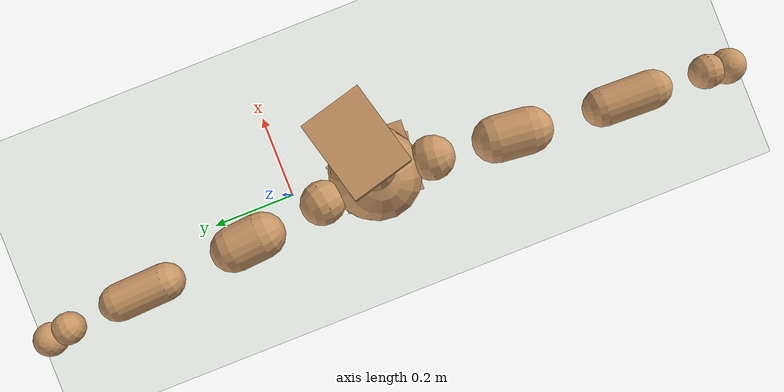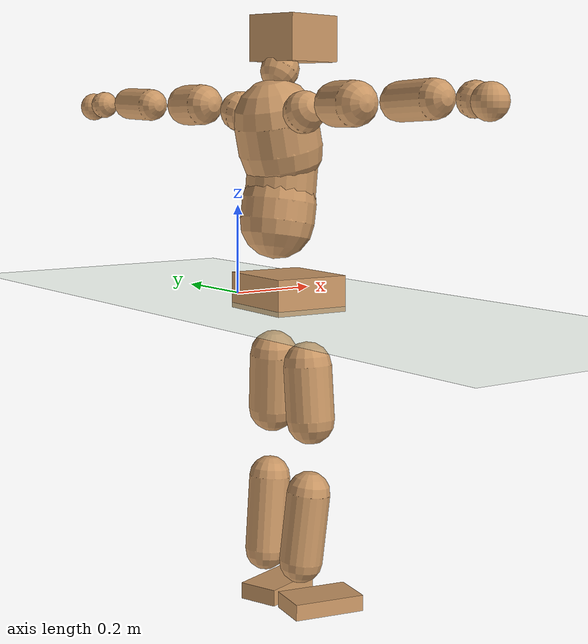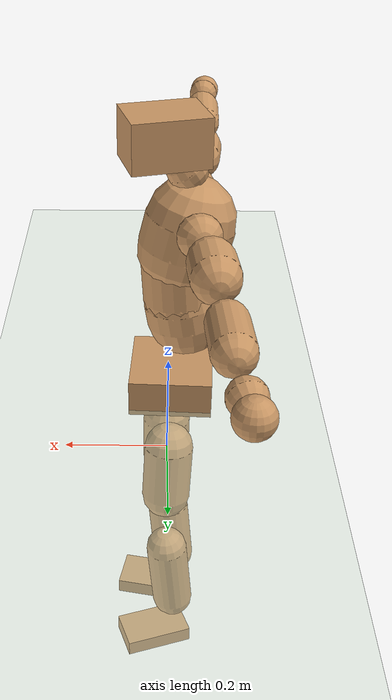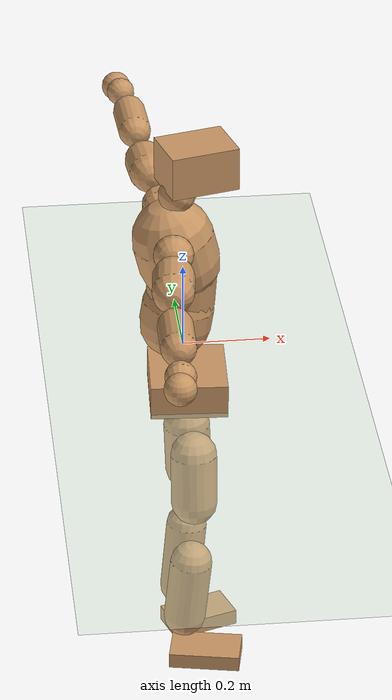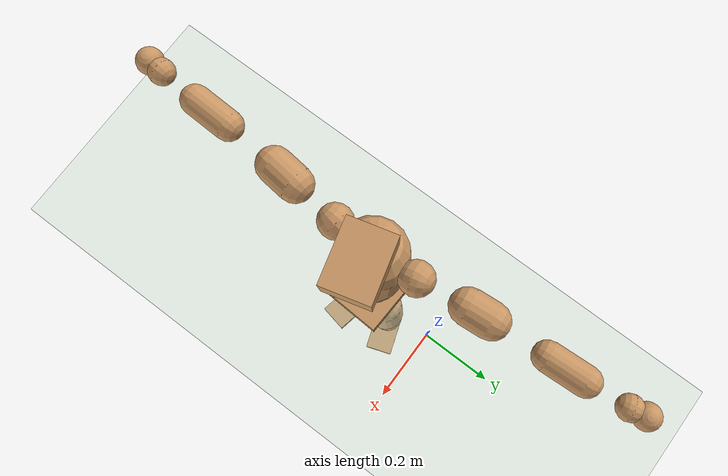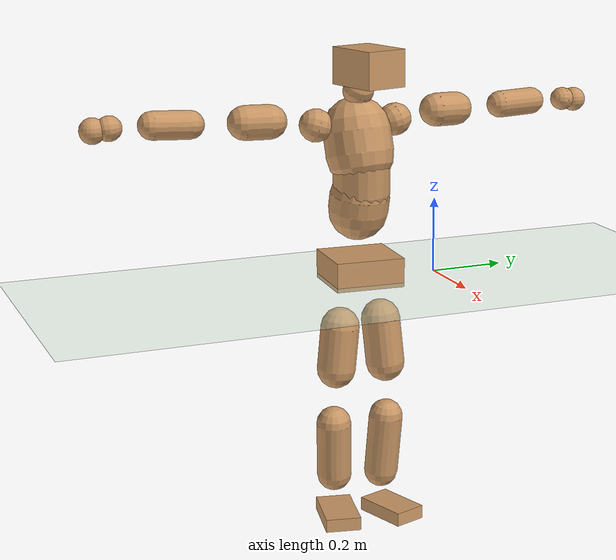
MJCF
<mujoco model="humanoid">
  <compiler coordinate="local" angle="radian"/>
  <default>
    <joint damping="0.0" armature="0.01" stiffness="0.0" limited="true"/>
    <geom conaffinity="1" condim="3" contype="7" margin="0.001" rgba="0.8 0.6 .4 1"/>
  </default>
  <asset>
    <texture type="skybox" builtin="gradient" rgb1=".4 .5 .6" rgb2="0 0 0" width="100" height="100"/>
    <texture builtin="flat" height="1278" mark="cross" markrgb="1 1 1" name="texgeom" random="0.01" rgb1="0.8 0.6 0.4" rgb2="0.8 0.6 0.4" type="cube" width="127"/>
    <texture builtin="checker" height="100" name="texplane" rgb1="0 0 0" rgb2="0.8 0.8 0.8" type="2d" width="100"/>
    <material name="MatPlane" reflectance="0.5" shininess="1" specular="1" texrepeat="60 60" texture="texplane"/>
    <material name="geom" texture="texgeom" texuniform="true"/>
  </asset>
  <worldbody>
    <light cutoff="100" diffuse="1 1 1" dir="-0 0 -1.3" directional="true" exponent="1" pos="0 0 1.3" specular=".1 .1 .1"/>
    <geom conaffinity="1" condim="3" name="floor" pos="0 0 0" rgba="0.8 0.9 0.8 1" size="100 100 .2" type="plane" material="MatPlane"/>
    <body name="Pelvis" pos="-0.0031 -0.2103 0.0326">
      <freejoint name="Pelvis"/>
      <geom type="box" contype="1" conaffinity="1" density="5359.375266" pos="-0.0081 0.0004 -0.0066" size="0.0854 0.0931 0.0388" quat="0.9997 0.0000 0.0000 -0.0251" name="Pelvis"/>
      <body name="L_Hip" pos="-0.0077 0.0511 -0.07">
        <joint name="L_Hip_x" type="hinge" pos="0 0 0" axis="1 0 0" stiffness="1600" damping="160" armature="0.02" range="-180.0000 180.0000"/>
        <joint name="L_Hip_y" type="hinge" pos="0 0 0" axis="0 1 0" stiffness="1600" damping="160" armature="0.02" range="-180.0000 180.0000"/>
        <joint name="L_Hip_z" type="hinge" pos="0 0 0" axis="0 0 1" stiffness="1600" damping="160" armature="0.02" range="-180.0000 180.0000"/>
        <geom type="capsule" contype="1" conaffinity="1" density="2040.816327" size="0.0526" fromto="0.0035 0.0079 -0.0822 0.0088 0.0197 -0.2057" name="L_Hip"/>
        <body name="L_Knee" pos="0.0123 0.0276 -0.2879">
          <joint name="L_Knee_x" type="hinge" pos="0 0 0" axis="1 0 0" stiffness="1600" damping="160" armature="0.02" range="-180.0000 180.0000"/>
          <joint name="L_Knee_y" type="hinge" pos="0 0 0" axis="0 1 0" stiffness="1600" damping="160" armature="0.02" range="-180.0000 180.0000"/>
          <joint name="L_Knee_z" type="hinge" pos="0 0 0" axis="0 0 1" stiffness="1600" damping="160" armature="0.02" range="-180.0000 180.0000"/>
          <geom type="capsule" contype="1" conaffinity="1" density="1234.567901" size="0.046" fromto="-0.0073 -0.0031 -0.0756 -0.0232 -0.0100 -0.2410" name="L_Knee"/>
          <body name="L_Ankle" pos="-0.0305 -0.0131 -0.3166">
            <joint name="L_Ankle_x" type="hinge" pos="0 0 0" axis="1 0 0" stiffness="1600" damping="160" armature="0.02" range="-180.0000 180.0000"/>
            <joint name="L_Ankle_y" type="hinge" pos="0 0 0" axis="0 1 0" stiffness="1600" damping="160" armature="0.02" range="-180.0000 180.0000"/>
            <joint name="L_Ankle_z" type="hinge" pos="0 0 0" axis="0 0 1" stiffness="1600" damping="160" armature="0.02" range="-180.0000 180.0000"/>
            <geom type="box" contype="1" conaffinity="1" density="999.999995" pos="0.0513 0.0174 -0.0235" size="0.0764 0.0452 0.0184" quat="0.9867 0.0000 0.0000 0.1623" name="L_Ankle"/>
            <body name="L_Toe" pos="0.1027 0.0347 -0.0471">
              <joint name="L_Toe_x" type="hinge" pos="0 0 0" axis="1 0 0" stiffness="1000" damping="100" armature="0.02" range="-180.0000 180.0000"/>
              <joint name="L_Toe_y" type="hinge" pos="0 0 0" axis="0 1 0" stiffness="1000" damping="100" armature="0.02" range="-180.0000 180.0000"/>
              <joint name="L_Toe_z" type="hinge" pos="0 0 0" axis="0 0 1" stiffness="1000" damping="100" armature="0.02" range="-180.0000 180.0000"/>
              <geom type="box" contype="1" conaffinity="1" density="8093769.184512" pos="0.0000 0.0000 0.0223" size="0.001 0.0022 0.0009" quat="0.9858 0.0000 0.0000 0.1679" name="L_Toe"/>
            </body>
          </body>
        </body>
      </body>
      <body name="R_Hip" pos="-0.0005 -0.0525 -0.0795">
        <joint name="R_Hip_x" type="hinge" pos="0 0 0" axis="1 0 0" stiffness="1600" damping="160" armature="0.02" range="-180.0000 180.0000"/>
        <joint name="R_Hip_y" type="hinge" pos="0 0 0" axis="0 1 0" stiffness="1600" damping="160" armature="0.02" range="-180.0000 180.0000"/>
        <joint name="R_Hip_z" type="hinge" pos="0 0 0" axis="0 0 1" stiffness="1600" damping="160" armature="0.02" range="-180.0000 180.0000"/>
        <geom type="capsule" contype="1" conaffinity="1" density="2040.816327" size="0.0522" fromto="0.0001 -0.0079 -0.0818 0.0003 -0.0191 -0.1993" name="R_Hip"/>
        <body name="R_Knee" pos="0.0005 -0.027 -0.2811">
          <joint name="R_Knee_x" type="hinge" pos="0 0 0" axis="1 0 0" stiffness="1600" damping="160" armature="0.02" range="-180.0000 180.0000"/>
          <joint name="R_Knee_y" type="hinge" pos="0 0 0" axis="0 1 0" stiffness="1600" damping="160" armature="0.02" range="-180.0000 180.0000"/>
          <joint name="R_Knee_z" type="hinge" pos="0 0 0" axis="0 0 1" stiffness="1600" damping="160" armature="0.02" range="-180.0000 180.0000"/>
          <geom type="capsule" contype="1" conaffinity="1" density="1234.567901" size="0.0474" fromto="-0.0075 0.0034 -0.0770 -0.0223 0.0102 -0.2283" name="R_Knee"/>
          <body name="R_Ankle" pos="-0.0298 0.0136 -0.3053">
            <joint name="R_Ankle_x" type="hinge" pos="0 0 0" axis="1 0 0" stiffness="1600" damping="160" armature="0.02" range="-180.0000 180.0000"/>
            <joint name="R_Ankle_y" type="hinge" pos="0 0 0" axis="0 1 0" stiffness="1600" damping="160" armature="0.02" range="-180.0000 180.0000"/>
            <joint name="R_Ankle_z" type="hinge" pos="0 0 0" axis="0 0 1" stiffness="1600" damping="160" armature="0.02" range="-180.0000 180.0000"/>
            <geom type="box" contype="1" conaffinity="1" density="999.999965" pos="0.0558 -0.0111 -0.0224" size="0.0804 0.0474 0.0178" quat="0.9951 0.0000 0.0000 -0.0985" name="R_Ankle"/>
            <body name="R_Toe" pos="0.1115 -0.0223 -0.0449">
              <joint name="R_Toe_x" type="hinge" pos="0 0 0" axis="1 0 0" stiffness="1000" damping="100" armature="0.02" range="-180.0000 180.0000"/>
              <joint name="R_Toe_y" type="hinge" pos="0 0 0" axis="0 1 0" stiffness="1000" damping="100" armature="0.02" range="-180.0000 180.0000"/>
              <joint name="R_Toe_z" type="hinge" pos="0 0 0" axis="0 0 1" stiffness="1000" damping="100" armature="0.02" range="-180.0000 180.0000"/>
              <geom type="box" contype="1" conaffinity="1" density="8220797.659086" pos="0.0000 0.0000 0.0246" size="0.001 0.0024 0.001" quat="0.9961 0.0000 0.0000 -0.0883" name="R_Toe"/>
            </body>
          </body>
        </body>
      </body>
      <body name="Torso" pos="-0.0405 0.0038 0.1097">
        <joint name="Torso_x" type="hinge" pos="0 0 0" axis="1 0 0" stiffness="2000" damping="200" armature="0.02" range="-180.0000 180.0000"/>
        <joint name="Torso_y" type="hinge" pos="0 0 0" axis="0 1 0" stiffness="2000" damping="200" armature="0.02" range="-180.0000 180.0000"/>
        <joint name="Torso_z" type="hinge" pos="0 0 0" axis="0 0 1" stiffness="2000" damping="200" armature="0.02" range="-180.0000 180.0000"/>
        <geom type="capsule" contype="1" conaffinity="1" density="2040.816327" size="0.08" fromto="0.0133 0.0036 0.0788 0.0061 0.0016 0.0359" name="Torso"/>
        <body name="Spine" pos="0.0193 0.0052 0.1147">
          <joint name="Spine_x" type="hinge" pos="0 0 0" axis="1 0 0" stiffness="2000" damping="200" armature="0.02" range="-180.0000 180.0000"/>
          <joint name="Spine_y" type="hinge" pos="0 0 0" axis="0 1 0" stiffness="2000" damping="200" armature="0.02" range="-180.0000 180.0000"/>
          <joint name="Spine_z" type="hinge" pos="0 0 0" axis="0 0 1" stiffness="2000" damping="200" armature="0.02" range="-180.0000 180.0000"/>
          <geom type="capsule" contype="1" conaffinity="1" density="2040.816327" size="0.0762" fromto="0.0052 -0.0022 0.0760 -0.0021 0.0009 -0.0305" name="Spine"/>
          <body name="Chest" pos="0.0031 -0.0013 0.0455">
            <joint name="Chest_x" type="hinge" pos="0 0 0" axis="1 0 0" stiffness="2000" damping="200" armature="0.02" range="-180.0000 180.0000"/>
            <joint name="Chest_y" type="hinge" pos="0 0 0" axis="0 1 0" stiffness="2000" damping="200" armature="0.02" range="-180.0000 180.0000"/>
            <joint name="Chest_z" type="hinge" pos="0 0 0" axis="0 0 1" stiffness="2000" damping="200" armature="0.02" range="-180.0000 180.0000"/>
            <geom type="capsule" contype="1" conaffinity="1" density="2040.816327" size="0.0903" fromto="-0.0214 -0.0050 0.0875 -0.0068 -0.0016 0.0279" name="Chest"/>
            <body name="Neck" pos="-0.0328 -0.0093 0.1619">
              <joint name="Neck_x" type="hinge" pos="0 0 0" axis="1 0 0" stiffness="1000" damping="100" armature="0.02" range="-180.0000 180.0000"/>
              <joint name="Neck_y" type="hinge" pos="0 0 0" axis="0 1 0" stiffness="1000" damping="100" armature="0.02" range="-180.0000 180.0000"/>
              <joint name="Neck_z" type="hinge" pos="0 0 0" axis="0 0 1" stiffness="1000" damping="100" armature="0.02" range="-180.0000 180.0000"/>
              <geom type="capsule" contype="1" conaffinity="1" density="1000" size="0.0409" fromto="0.0221 0.0051 0.0340 0.0202 0.0047 0.0312" name="Neck"/>
              <body name="Head" pos="0.0423 0.0097 0.0652">
                <joint name="Head_x" type="hinge" pos="0 0 0" axis="1 0 0" stiffness="1000" damping="100" armature="0.02" range="-180.0000 180.0000"/>
                <joint name="Head_y" type="hinge" pos="0 0 0" axis="0 1 0" stiffness="1000" damping="100" armature="0.02" range="-180.0000 180.0000"/>
                <joint name="Head_z" type="hinge" pos="0 0 0" axis="0 0 1" stiffness="1000" damping="100" armature="0.02" range="-180.0000 180.0000"/>
                <geom type="box" contype="1" conaffinity="1" density="2250.000109" pos="0.0222 0.0059 0.0336" size="0.0765 0.058 0.0486" quat="0.9916 0.0000 0.0000 0.1291" name="Head"/>
              </body>
            </body>
            <body name="L_Thorax" pos="-0.0256 0.0564 0.0926">
              <joint name="L_Thorax_x" type="hinge" pos="0 0 0" axis="1 0 0" stiffness="1000" damping="100" armature="0.02" range="-180.0000 180.0000"/>
              <joint name="L_Thorax_y" type="hinge" pos="0 0 0" axis="0 1 0" stiffness="1000" damping="100" armature="0.02" range="-180.0000 180.0000"/>
              <joint name="L_Thorax_z" type="hinge" pos="0 0 0" axis="0 0 1" stiffness="1000" damping="100" armature="0.02" range="-180.0000 180.0000"/>
              <geom type="capsule" contype="1" conaffinity="1" density="1000" size="0.0436" fromto="-0.0086 0.0520 0.0156 -0.0089 0.0539 0.0161" name="L_Thorax"/>
              <body name="L_Shoulder" pos="-0.0175 0.1058 0.0317">
                <joint name="L_Shoulder_x" type="hinge" pos="0 0 0" axis="1 0 0" stiffness="1000" damping="100" armature="0.02" range="-720.0000 720.0000"/>
                <joint name="L_Shoulder_y" type="hinge" pos="0 0 0" axis="0 1 0" stiffness="1000" damping="100" armature="0.02" range="-720.0000 720.0000"/>
                <joint name="L_Shoulder_z" type="hinge" pos="0 0 0" axis="0 0 1" stiffness="1000" damping="100" armature="0.02" range="-720.0000 720.0000"/>
                <geom type="capsule" contype="1" conaffinity="1" density="1000" size="0.045" fromto="-0.0063 0.0747 -0.0011 -0.0113 0.1339 -0.0019" name="L_Shoulder"/>
                <body name="L_Elbow" pos="-0.0176 0.2087 -0.003">
                  <joint name="L_Elbow_x" type="hinge" pos="0 0 0" axis="1 0 0" stiffness="1000" damping="100" armature="0.02" range="-720.0000 720.0000"/>
                  <joint name="L_Elbow_y" type="hinge" pos="0 0 0" axis="0 1 0" stiffness="1000" damping="100" armature="0.02" range="-720.0000 720.0000"/>
                  <joint name="L_Elbow_z" type="hinge" pos="0 0 0" axis="0 0 1" stiffness="1000" damping="100" armature="0.02" range="-720.0000 720.0000"/>
                  <geom type="capsule" contype="1" conaffinity="1" density="1000" size="0.0366" fromto="-0.0033 0.0665 0.0024 -0.0079 0.1621 0.0058" name="L_Elbow"/>
                  <body name="L_Wrist" pos="-0.0112 0.2286 0.0082">
                    <joint name="L_Wrist_x" type="hinge" pos="0 0 0" axis="1 0 0" stiffness="600" damping="60" armature="0.02" range="-180.0000 180.0000"/>
                    <joint name="L_Wrist_y" type="hinge" pos="0 0 0" axis="0 1 0" stiffness="600" damping="60" armature="0.02" range="-180.0000 180.0000"/>
                    <joint name="L_Wrist_z" type="hinge" pos="0 0 0" axis="0 0 1" stiffness="600" damping="60" armature="0.02" range="-180.0000 180.0000"/>
                    <geom type="capsule" contype="1" conaffinity="1" density="1000" size="0.0314" fromto="-0.0070 0.0390 -0.0046 -0.0074 0.0410 -0.0048" name="L_Wrist"/>
                    <body name="L_Hand" pos="-0.0144 0.0801 -0.0094">
                      <joint name="L_Hand_x" type="hinge" pos="0 0 0" axis="1 0 0" stiffness="600" damping="60" armature="0.02" range="-180.0000 180.0000"/>
                      <joint name="L_Hand_y" type="hinge" pos="0 0 0" axis="0 1 0" stiffness="600" damping="60" armature="0.02" range="-180.0000 180.0000"/>
                      <joint name="L_Hand_z" type="hinge" pos="0 0 0" axis="0 0 1" stiffness="600" damping="60" armature="0.02" range="-180.0000 180.0000"/>
                      <geom type="sphere" contype="1" conaffinity="1" density="1000" size="0.0327" pos="0.0000 0.0000 0.0000" name="L_Hand"/>
                    </body>
                  </body>
                </body>
              </body>
            </body>
            <body name="R_Thorax" pos="-0.0263 -0.0671 0.0918">
              <joint name="R_Thorax_x" type="hinge" pos="0 0 0" axis="1 0 0" stiffness="1000" damping="100" armature="0.02" range="-180.0000 180.0000"/>
              <joint name="R_Thorax_y" type="hinge" pos="0 0 0" axis="0 1 0" stiffness="1000" damping="100" armature="0.02" range="-180.0000 180.0000"/>
              <joint name="R_Thorax_z" type="hinge" pos="0 0 0" axis="0 0 1" stiffness="1000" damping="100" armature="0.02" range="-180.0000 180.0000"/>
              <geom type="capsule" contype="1" conaffinity="1" density="1000" size="0.0439" fromto="-0.0040 -0.0472 0.0145 -0.0042 -0.0491 0.0151" name="R_Thorax"/>
              <body name="R_Shoulder" pos="-0.0082 -0.0963 0.0297">
                <joint name="R_Shoulder_x" type="hinge" pos="0 0 0" axis="1 0 0" stiffness="1000" damping="100" armature="0.02" range="-720.0000 720.0000"/>
                <joint name="R_Shoulder_y" type="hinge" pos="0 0 0" axis="0 1 0" stiffness="1000" damping="100" armature="0.02" range="-720.0000 720.0000"/>
                <joint name="R_Shoulder_z" type="hinge" pos="0 0 0" axis="0 0 1" stiffness="1000" damping="100" armature="0.02" range="-720.0000 720.0000"/>
                <geom type="capsule" contype="1" conaffinity="1" density="1000" size="0.0455" fromto="-0.0081 -0.0751 0.0005 -0.0152 -0.1405 0.0009" name="R_Shoulder"/>
                <body name="R_Elbow" pos="-0.0233 -0.2156 0.0013">
                  <joint name="R_Elbow_x" type="hinge" pos="0 0 0" axis="1 0 0" stiffness="1000" damping="100" armature="0.02" range="-720.0000 720.0000"/>
                  <joint name="R_Elbow_y" type="hinge" pos="0 0 0" axis="0 1 0" stiffness="1000" damping="100" armature="0.02" range="-720.0000 720.0000"/>
                  <joint name="R_Elbow_z" type="hinge" pos="0 0 0" axis="0 0 1" stiffness="1000" damping="100" armature="0.02" range="-720.0000 720.0000"/>
                  <geom type="capsule" contype="1" conaffinity="1" density="1000" size="0.0376" fromto="-0.0020 -0.0675 0.0026 -0.0049 -0.1650 0.0065" name="R_Elbow"/>
                  <body name="R_Wrist" pos="-0.0069 -0.2325 0.0091">
                    <joint name="R_Wrist_x" type="hinge" pos="0 0 0" axis="1 0 0" stiffness="600" damping="60" armature="0.02" range="-180.0000 180.0000"/>
                    <joint name="R_Wrist_y" type="hinge" pos="0 0 0" axis="0 1 0" stiffness="600" damping="60" armature="0.02" range="-180.0000 180.0000"/>
                    <joint name="R_Wrist_z" type="hinge" pos="0 0 0" axis="0 0 1" stiffness="600" damping="60" armature="0.02" range="-180.0000 180.0000"/>
                    <geom type="capsule" contype="1" conaffinity="1" density="1000" size="0.0328" fromto="-0.0047 -0.0406 -0.0040 -0.0049 -0.0426 -0.0042" name="R_Wrist"/>
                    <body name="R_Hand" pos="-0.0095 -0.0831 -0.0083">
                      <joint name="R_Hand_x" type="hinge" pos="0 0 0" axis="1 0 0" stiffness="600" damping="60" armature="0.02" range="-180.0000 180.0000"/>
                      <joint name="R_Hand_y" type="hinge" pos="0 0 0" axis="0 1 0" stiffness="600" damping="60" armature="0.02" range="-180.0000 180.0000"/>
                      <joint name="R_Hand_z" type="hinge" pos="0 0 0" axis="0 0 1" stiffness="600" damping="60" armature="0.02" range="-180.0000 180.0000"/>
                      <geom type="sphere" contype="1" conaffinity="1" density="1000" size="0.0339" pos="0.0000 0.0000 0.0000" name="R_Hand"/>
                    </body>
                  </body>
                </body>
              </body>
            </body>
          </body>
        </body>
      </body>
    </body>
  </worldbody>
  <actuator>
    <motor name="L_Hip_x" joint="L_Hip_x" gear="500"/>
    <motor name="L_Hip_y" joint="L_Hip_y" gear="500"/>
    <motor name="L_Hip_z" joint="L_Hip_z" gear="500"/>
    <motor name="L_Knee_x" joint="L_Knee_x" gear="500"/>
    <motor name="L_Knee_y" joint="L_Knee_y" gear="500"/>
    <motor name="L_Knee_z" joint="L_Knee_z" gear="500"/>
    <motor name="L_Ankle_x" joint="L_Ankle_x" gear="500"/>
    <motor name="L_Ankle_y" joint="L_Ankle_y" gear="500"/>
    <motor name="L_Ankle_z" joint="L_Ankle_z" gear="500"/>
    <motor name="L_Toe_x" joint="L_Toe_x" gear="500"/>
    <motor name="L_Toe_y" joint="L_Toe_y" gear="500"/>
    <motor name="L_Toe_z" joint="L_Toe_z" gear="500"/>
    <motor name="R_Hip_x" joint="R_Hip_x" gear="500"/>
    <motor name="R_Hip_y" joint="R_Hip_y" gear="500"/>
    <motor name="R_Hip_z" joint="R_Hip_z" gear="500"/>
    <motor name="R_Knee_x" joint="R_Knee_x" gear="500"/>
    <motor name="R_Knee_y" joint="R_Knee_y" gear="500"/>
    <motor name="R_Knee_z" joint="R_Knee_z" gear="500"/>
    <motor name="R_Ankle_x" joint="R_Ankle_x" gear="500"/>
    <motor name="R_Ankle_y" joint="R_Ankle_y" gear="500"/>
    <motor name="R_Ankle_z" joint="R_Ankle_z" gear="500"/>
    <motor name="R_Toe_x" joint="R_Toe_x" gear="500"/>
    <motor name="R_Toe_y" joint="R_Toe_y" gear="500"/>
    <motor name="R_Toe_z" joint="R_Toe_z" gear="500"/>
    <motor name="Torso_x" joint="Torso_x" gear="500"/>
    <motor name="Torso_y" joint="Torso_y" gear="500"/>
    <motor name="Torso_z" joint="Torso_z" gear="500"/>
    <motor name="Spine_x" joint="Spine_x" gear="500"/>
    <motor name="Spine_y" joint="Spine_y" gear="500"/>
    <motor name="Spine_z" joint="Spine_z" gear="500"/>
    <motor name="Chest_x" joint="Chest_x" gear="500"/>
    <motor name="Chest_y" joint="Chest_y" gear="500"/>
    <motor name="Chest_z" joint="Chest_z" gear="500"/>
    <motor name="Neck_x" joint="Neck_x" gear="500"/>
    <motor name="Neck_y" joint="Neck_y" gear="500"/>
    <motor name="Neck_z" joint="Neck_z" gear="500"/>
    <motor name="Head_x" joint="Head_x" gear="500"/>
    <motor name="Head_y" joint="Head_y" gear="500"/>
    <motor name="Head_z" joint="Head_z" gear="500"/>
    <motor name="L_Thorax_x" joint="L_Thorax_x" gear="500"/>
    <motor name="L_Thorax_y" joint="L_Thorax_y" gear="500"/>
    <motor name="L_Thorax_z" joint="L_Thorax_z" gear="500"/>
    <motor name="L_Shoulder_x" joint="L_Shoulder_x" gear="500"/>
    <motor name="L_Shoulder_y" joint="L_Shoulder_y" gear="500"/>
    <motor name="L_Shoulder_z" joint="L_Shoulder_z" gear="500"/>
    <motor name="L_Elbow_x" joint="L_Elbow_x" gear="500"/>
    <motor name="L_Elbow_y" joint="L_Elbow_y" gear="500"/>
    <motor name="L_Elbow_z" joint="L_Elbow_z" gear="500"/>
    <motor name="L_Wrist_x" joint="L_Wrist_x" gear="500"/>
    <motor name="L_Wrist_y" joint="L_Wrist_y" gear="500"/>
    <motor name="L_Wrist_z" joint="L_Wrist_z" gear="500"/>
    <motor name="L_Hand_x" joint="L_Hand_x" gear="500"/>
    <motor name="L_Hand_y" joint="L_Hand_y" gear="500"/>
    <motor name="L_Hand_z" joint="L_Hand_z" gear="500"/>
    <motor name="R_Thorax_x" joint="R_Thorax_x" gear="500"/>
    <motor name="R_Thorax_y" joint="R_Thorax_y" gear="500"/>
    <motor name="R_Thorax_z" joint="R_Thorax_z" gear="500"/>
    <motor name="R_Shoulder_x" joint="R_Shoulder_x" gear="500"/>
    <motor name="R_Shoulder_y" joint="R_Shoulder_y" gear="500"/>
    <motor name="R_Shoulder_z" joint="R_Shoulder_z" gear="500"/>
    <motor name="R_Elbow_x" joint="R_Elbow_x" gear="500"/>
    <motor name="R_Elbow_y" joint="R_Elbow_y" gear="500"/>
    <motor name="R_Elbow_z" joint="R_Elbow_z" gear="500"/>
    <motor name="R_Wrist_x" joint="R_Wrist_x" gear="500"/>
    <motor name="R_Wrist_y" joint="R_Wrist_y" gear="500"/>
    <motor name="R_Wrist_z" joint="R_Wrist_z" gear="500"/>
    <motor name="R_Hand_x" joint="R_Hand_x" gear="500"/>
    <motor name="R_Hand_y" joint="R_Hand_y" gear="500"/>
    <motor name="R_Hand_z" joint="R_Hand_z" gear="500"/>
  </actuator>
  <contact>
    <exclude body1="Torso" body2="Chest"/>
    <exclude body1="Head" body2="Chest"/>
    <exclude body1="R_Knee" body2="R_Toe"/>
    <exclude body1="R_Knee" body2="L_Ankle"/>
    <exclude body1="R_Knee" body2="L_Toe"/>
    <exclude body1="L_Knee" body2="L_Toe"/>
    <exclude body1="L_Knee" body2="R_Ankle"/>
    <exclude body1="L_Knee" body2="R_Toe"/>
    <exclude body1="L_Shoulder" body2="Chest"/>
    <exclude body1="R_Shoulder" body2="Chest"/>
  </contact>
  <sensor/>
  <size njmax="700" nconmax="700"/>
</mujoco>
